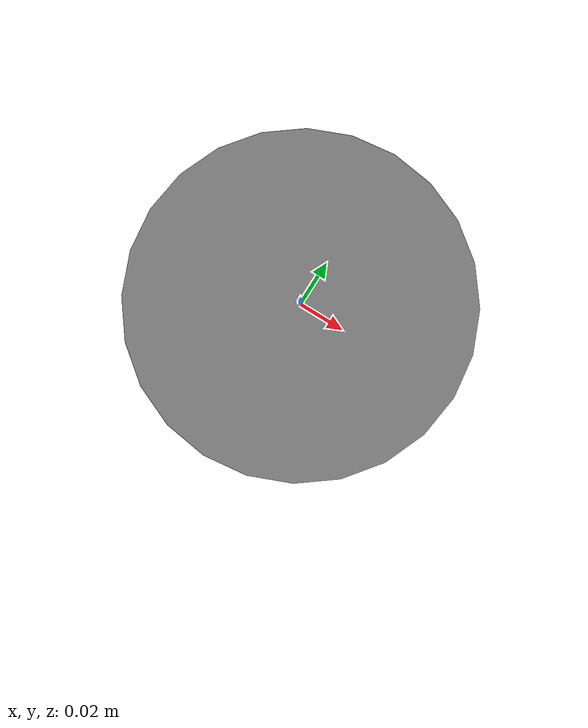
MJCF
<mujoco model="end_effector">
  <compiler angle="radian" meshdir="assets" autolimits="true"/>

  <option timestep="0.0005"/>

  <worldbody>
    <light name="top" pos="0 0 2" mode="trackcom"/>
    <body name="base_link">
      <inertial mass="0.37" pos="0 0 0" diaginertia="0.00048818 0.00048818 0.00097241"/>
      <geom type="cylinder" size="0.0725 0.005" priority="1" condim="3" friction="0.6 .01 .003"/>
        <joint name="end_effector_x" type="slide" range="0.4 0.6" axis="1 0 0" limited="true"/>
          <joint name="end_effector_y" type="slide" range="-0.1 0.1" axis="0 1 0" limited="true"/>
            <joint name="end_effector_z" type="slide" range="0.35 0.7" axis="0 0 1" limited="true"/>
            <site name="eeff" pos="0 0 0.0" group="3"/>
    </body>
  </worldbody>

  <actuator>
    <general site="eeff" refsite="world" gaintype="fixed" forcerange="-10 10" ctrlrange="-1 1" forcelimited="true" ctrllimited="true" gainprm="10" gear="1 0 0 0 0 0"/>
    <general site="eeff" refsite="world" gaintype="fixed" forcerange="-10 10" ctrlrange="-1 1" forcelimited="true" ctrllimited="true" gainprm="10" gear="0 1 0 0 0 0"/>
    <general site="eeff" refsite="world" gaintype="fixed" forcerange="0 30" ctrlrange="0 1" forcelimited="true" ctrllimited="true" gainprm="30" gear="0 0 1 0 0 0"/>
  </actuator>
</mujoco>
